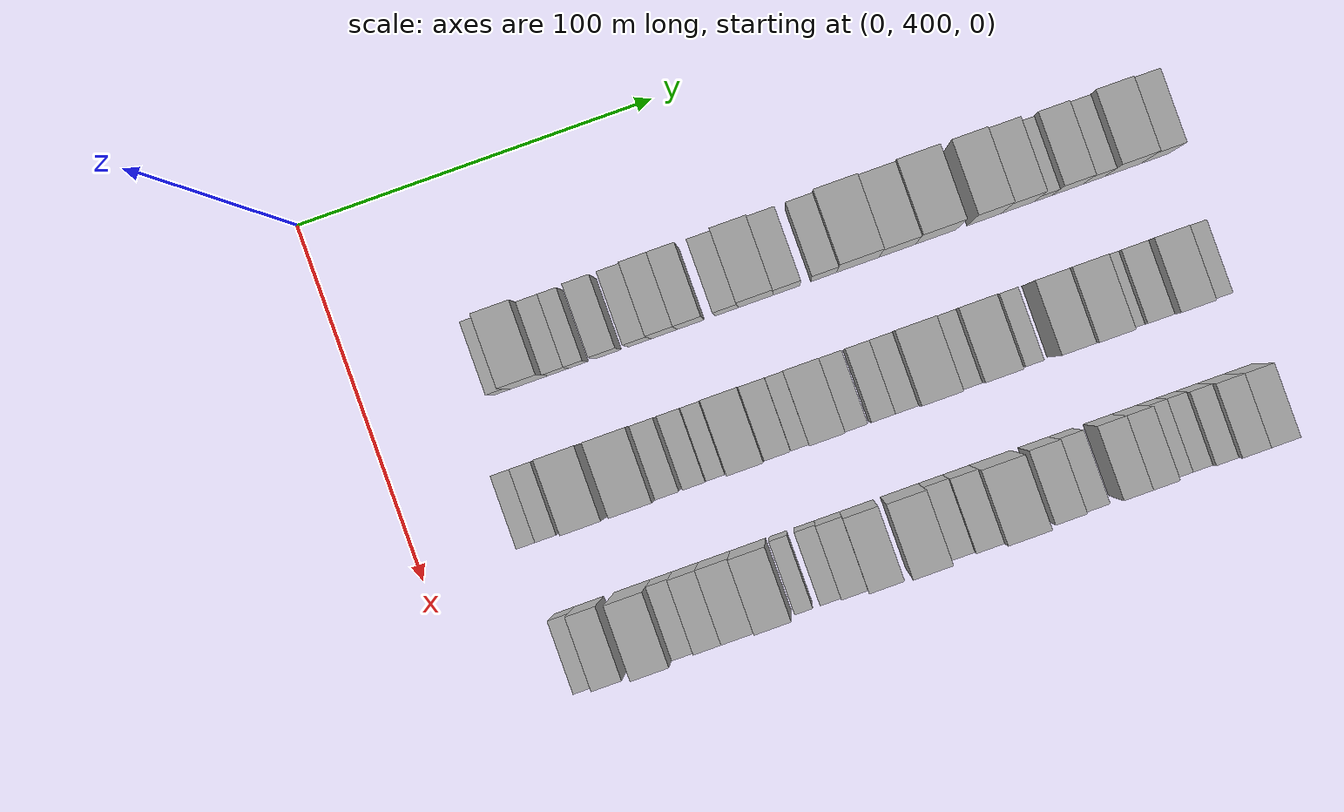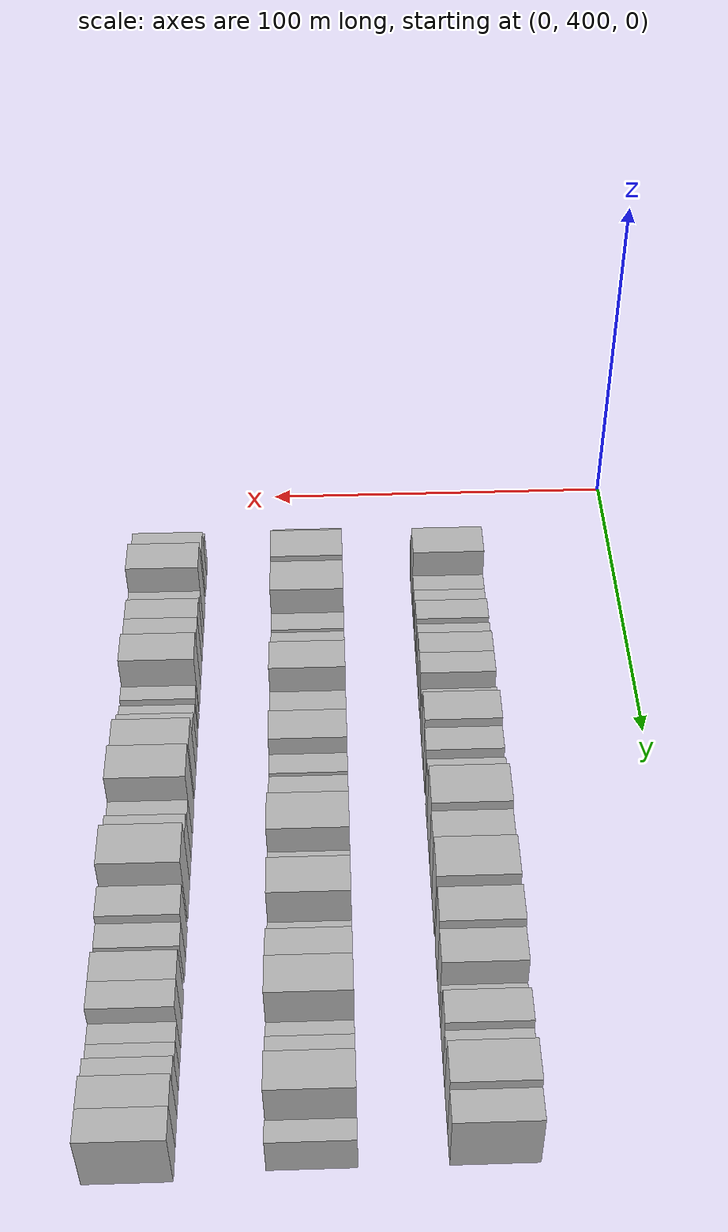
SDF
<sdf version="1.6">
 <world name="default">
  <model name="building_116">
   <static>1</static>
   <pose>50.0000 436.8128 0 0.000000 0.000000 0.000000</pose>
   <link name="link">
    <pose>0 0 6.00 0 0 0</pose>
    <collision name="collision"><geometry><box><size>20.0000 4.9068 12.0000</size></box></geometry></collision>
    <visual name="visual">
     <cast_shadows>0</cast_shadows>
     <geometry><box><size>20.0000 4.9068 12.0000</size></box></geometry>
     <material>
      <script>
       <uri>model://HANNAS_wall/materials/scripts</uri>
       <uri>model://HANNAS_wall/materials/textures</uri>
       <name>vrc/HANNAS_wall</name>
      </script>
     </material>
    </visual>
   </link>
  </model>
  <model name="building_117">
   <static>1</static>
   <pose>50.0000 444.4621 0 0.000000 0.000000 0.000000</pose>
   <link name="link">
    <pose>0 0 10.50 0 0 0</pose>
    <collision name="collision"><geometry><box><size>20.0000 10.3918 21.0000</size></box></geometry></collision>
    <visual name="visual">
     <cast_shadows>0</cast_shadows>
     <geometry><box><size>20.0000 10.3918 21.0000</size></box></geometry>
     <material>
      <script>
       <uri>model://HANNAS_wall/materials/scripts</uri>
       <uri>model://HANNAS_wall/materials/textures</uri>
       <name>vrc/HANNAS_wall</name>
      </script>
     </material>
    </visual>
   </link>
  </model>
  <model name="building_118">
   <static>1</static>
   <pose>50.0000 452.6016 0 0.000000 0.000000 0.000000</pose>
   <link name="link">
    <pose>0 0 6.00 0 0 0</pose>
    <collision name="collision"><geometry><box><size>20.0000 5.8871 12.0000</size></box></geometry></collision>
    <visual name="visual">
     <cast_shadows>0</cast_shadows>
     <geometry><box><size>20.0000 5.8871 12.0000</size></box></geometry>
     <material>
      <script>
       <uri>model://HANNAS_wall/materials/scripts</uri>
       <uri>model://HANNAS_wall/materials/textures</uri>
       <name>vrc/HANNAS_wall</name>
      </script>
     </material>
    </visual>
   </link>
  </model>
  <model name="building_119">
   <static>1</static>
   <pose>50.0000 458.1610 0 0.000000 0.000000 0.000000</pose>
   <link name="link">
    <pose>0 0 6.00 0 0 0</pose>
    <collision name="collision"><geometry><box><size>20.0000 5.2318 12.0000</size></box></geometry></collision>
    <visual name="visual">
     <cast_shadows>0</cast_shadows>
     <geometry><box><size>20.0000 5.2318 12.0000</size></box></geometry>
     <material>
      <script>
       <uri>model://HANNAS_wall/materials/scripts</uri>
       <uri>model://HANNAS_wall/materials/textures</uri>
       <name>vrc/HANNAS_wall</name>
      </script>
     </material>
    </visual>
   </link>
  </model>
  <model name="building_120">
   <static>1</static>
   <pose>50.0000 466.4466 0 0.000000 0.000000 0.000000</pose>
   <link name="link">
    <pose>0 0 7.50 0 0 0</pose>
    <collision name="collision"><geometry><box><size>20.0000 7.3394 15.0000</size></box></geometry></collision>
    <visual name="visual">
     <cast_shadows>0</cast_shadows>
     <geometry><box><size>20.0000 7.3394 15.0000</size></box></geometry>
     <material>
      <script>
       <uri>model://HANNAS_wall/materials/scripts</uri>
       <uri>model://HANNAS_wall/materials/textures</uri>
       <name>vrc/HANNAS_wall</name>
      </script>
     </material>
    </visual>
   </link>
  </model>
  <model name="building_121">
   <static>1</static>
   <pose>50.0000 475.3108 0 0.000000 0.000000 0.000000</pose>
   <link name="link">
    <pose>0 0 7.50 0 0 0</pose>
    <collision name="collision"><geometry><box><size>20.0000 6.3889 15.0000</size></box></geometry></collision>
    <visual name="visual">
     <cast_shadows>0</cast_shadows>
     <geometry><box><size>20.0000 6.3889 15.0000</size></box></geometry>
     <material>
      <script>
       <uri>model://HANNAS_wall/materials/scripts</uri>
       <uri>model://HANNAS_wall/materials/textures</uri>
       <name>vrc/HANNAS_wall</name>
      </script>
     </material>
    </visual>
   </link>
  </model>
  <model name="building_122">
   <static>1</static>
   <pose>50.0000 482.2318 0 0.000000 0.000000 0.000000</pose>
   <link name="link">
    <pose>0 0 9.00 0 0 0</pose>
    <collision name="collision"><geometry><box><size>20.0000 7.4531 18.0000</size></box></geometry></collision>
    <visual name="visual">
     <cast_shadows>0</cast_shadows>
     <geometry><box><size>20.0000 7.4531 18.0000</size></box></geometry>
     <material>
      <script>
       <uri>model://HANNAS_wall/materials/scripts</uri>
       <uri>model://HANNAS_wall/materials/textures</uri>
       <name>vrc/HANNAS_wall</name>
      </script>
     </material>
    </visual>
   </link>
  </model>
  <model name="building_123">
   <static>1</static>
   <pose>50.0000 489.7394 0 0.000000 0.000000 0.000000</pose>
   <link name="link">
    <pose>0 0 9.00 0 0 0</pose>
    <collision name="collision"><geometry><box><size>20.0000 7.5620 18.0000</size></box></geometry></collision>
    <visual name="visual">
     <cast_shadows>0</cast_shadows>
     <geometry><box><size>20.0000 7.5620 18.0000</size></box></geometry>
     <material>
      <script>
       <uri>model://HANNAS_wall/materials/scripts</uri>
       <uri>model://HANNAS_wall/materials/textures</uri>
       <name>vrc/HANNAS_wall</name>
      </script>
     </material>
    </visual>
   </link>
  </model>
  <model name="building_124">
   <static>1</static>
   <pose>50.0000 499.7995 0 0.000000 0.000000 0.000000</pose>
   <link name="link">
    <pose>0 0 7.50 0 0 0</pose>
    <collision name="collision"><geometry><box><size>20.0000 6.5583 15.0000</size></box></geometry></collision>
    <visual name="visual">
     <cast_shadows>0</cast_shadows>
     <geometry><box><size>20.0000 6.5583 15.0000</size></box></geometry>
     <material>
      <script>
       <uri>model://HANNAS_wall/materials/scripts</uri>
       <uri>model://HANNAS_wall/materials/textures</uri>
       <name>vrc/HANNAS_wall</name>
      </script>
     </material>
    </visual>
   </link>
  </model>
  <model name="building_125">
   <static>1</static>
   <pose>50.0000 507.9687 0 0.000000 0.000000 0.000000</pose>
   <link name="link">
    <pose>0 0 10.50 0 0 0</pose>
    <collision name="collision"><geometry><box><size>20.0000 9.7802 21.0000</size></box></geometry></collision>
    <visual name="visual">
     <cast_shadows>0</cast_shadows>
     <geometry><box><size>20.0000 9.7802 21.0000</size></box></geometry>
     <material>
      <script>
       <uri>model://HANNAS_wall/materials/scripts</uri>
       <uri>model://HANNAS_wall/materials/textures</uri>
       <name>vrc/HANNAS_wall</name>
      </script>
     </material>
    </visual>
   </link>
  </model>
  <model name="building_126">
   <static>1</static>
   <pose>50.0000 516.6600 0 0.000000 0.000000 0.000000</pose>
   <link name="link">
    <pose>0 0 9.00 0 0 0</pose>
    <collision name="collision"><geometry><box><size>20.0000 7.6024 18.0000</size></box></geometry></collision>
    <visual name="visual">
     <cast_shadows>0</cast_shadows>
     <geometry><box><size>20.0000 7.6024 18.0000</size></box></geometry>
     <material>
      <script>
       <uri>model://HANNAS_wall/materials/scripts</uri>
       <uri>model://HANNAS_wall/materials/textures</uri>
       <name>vrc/HANNAS_wall</name>
      </script>
     </material>
    </visual>
   </link>
  </model>
  <model name="building_127">
   <static>1</static>
   <pose>50.0000 527.1041 0 0.000000 0.000000 0.000000</pose>
   <link name="link">
    <pose>0 0 9.00 0 0 0</pose>
    <collision name="collision"><geometry><box><size>20.0000 7.2858 18.0000</size></box></geometry></collision>
    <visual name="visual">
     <cast_shadows>0</cast_shadows>
     <geometry><box><size>20.0000 7.2858 18.0000</size></box></geometry>
     <material>
      <script>
       <uri>model://HANNAS_wall/materials/scripts</uri>
       <uri>model://HANNAS_wall/materials/textures</uri>
       <name>vrc/HANNAS_wall</name>
      </script>
     </material>
    </visual>
   </link>
  </model>
  <model name="building_128">
   <static>1</static>
   <pose>50.0000 536.6849 0 0.000000 0.000000 0.000000</pose>
   <link name="link">
    <pose>0 0 12.00 0 0 0</pose>
    <collision name="collision"><geometry><box><size>20.0000 11.8758 24.0000</size></box></geometry></collision>
    <visual name="visual">
     <cast_shadows>0</cast_shadows>
     <geometry><box><size>20.0000 11.8758 24.0000</size></box></geometry>
     <material>
      <script>
       <uri>model://HANNAS_wall/materials/scripts</uri>
       <uri>model://HANNAS_wall/materials/textures</uri>
       <name>vrc/HANNAS_wall</name>
      </script>
     </material>
    </visual>
   </link>
  </model>
  <model name="building_129">
   <static>1</static>
   <pose>50.0000 547.7642 0 0.000000 0.000000 0.000000</pose>
   <link name="link">
    <pose>0 0 10.50 0 0 0</pose>
    <collision name="collision"><geometry><box><size>20.0000 10.2828 21.0000</size></box></geometry></collision>
    <visual name="visual">
     <cast_shadows>0</cast_shadows>
     <geometry><box><size>20.0000 10.2828 21.0000</size></box></geometry>
     <material>
      <script>
       <uri>model://HANNAS_wall/materials/scripts</uri>
       <uri>model://HANNAS_wall/materials/textures</uri>
       <name>vrc/HANNAS_wall</name>
      </script>
     </material>
    </visual>
   </link>
  </model>
  <model name="building_130">
   <static>1</static>
   <pose>50.0000 558.7158 0 0.000000 0.000000 0.000000</pose>
   <link name="link">
    <pose>0 0 12.00 0 0 0</pose>
    <collision name="collision"><geometry><box><size>20.0000 11.6202 24.0000</size></box></geometry></collision>
    <visual name="visual">
     <cast_shadows>0</cast_shadows>
     <geometry><box><size>20.0000 11.6202 24.0000</size></box></geometry>
     <material>
      <script>
       <uri>model://HANNAS_wall/materials/scripts</uri>
       <uri>model://HANNAS_wall/materials/textures</uri>
       <name>vrc/HANNAS_wall</name>
      </script>
     </material>
    </visual>
   </link>
  </model>
  <model name="building_131">
   <static>1</static>
   <pose>50.0000 572.3497 0 0.000000 0.000000 0.000000</pose>
   <link name="link">
    <pose>0 0 12.00 0 0 0</pose>
    <collision name="collision"><geometry><box><size>20.0000 9.6477 24.0000</size></box></geometry></collision>
    <visual name="visual">
     <cast_shadows>0</cast_shadows>
     <geometry><box><size>20.0000 9.6477 24.0000</size></box></geometry>
     <material>
      <script>
       <uri>model://HANNAS_wall/materials/scripts</uri>
       <uri>model://HANNAS_wall/materials/textures</uri>
       <name>vrc/HANNAS_wall</name>
      </script>
     </material>
    </visual>
   </link>
  </model>
  <model name="building_132">
   <static>1</static>
   <pose>50.0000 581.7564 0 0.000000 0.000000 0.000000</pose>
   <link name="link">
    <pose>0 0 10.50 0 0 0</pose>
    <collision name="collision"><geometry><box><size>20.0000 9.1657 21.0000</size></box></geometry></collision>
    <visual name="visual">
     <cast_shadows>0</cast_shadows>
     <geometry><box><size>20.0000 9.1657 21.0000</size></box></geometry>
     <material>
      <script>
       <uri>model://HANNAS_wall/materials/scripts</uri>
       <uri>model://HANNAS_wall/materials/textures</uri>
       <name>vrc/HANNAS_wall</name>
      </script>
     </material>
    </visual>
   </link>
  </model>
  <model name="building_133">
   <static>1</static>
   <pose>50.0000 588.9365 0 0.000000 0.000000 0.000000</pose>
   <link name="link">
    <pose>0 0 6.00 0 0 0</pose>
    <collision name="collision"><geometry><box><size>20.0000 5.1944 12.0000</size></box></geometry></collision>
    <visual name="visual">
     <cast_shadows>0</cast_shadows>
     <geometry><box><size>20.0000 5.1944 12.0000</size></box></geometry>
     <material>
      <script>
       <uri>model://HANNAS_wall/materials/scripts</uri>
       <uri>model://HANNAS_wall/materials/textures</uri>
       <name>vrc/HANNAS_wall</name>
      </script>
     </material>
    </visual>
   </link>
  </model>
  <model name="building_134">
   <static>1</static>
   <pose>50.0000 595.8015 0 0.000000 0.000000 0.000000</pose>
   <link name="link">
    <pose>0 0 9.00 0 0 0</pose>
    <collision name="collision"><geometry><box><size>20.0000 8.5357 18.0000</size></box></geometry></collision>
    <visual name="visual">
     <cast_shadows>0</cast_shadows>
     <geometry><box><size>20.0000 8.5357 18.0000</size></box></geometry>
     <material>
      <script>
       <uri>model://HANNAS_wall/materials/scripts</uri>
       <uri>model://HANNAS_wall/materials/textures</uri>
       <name>vrc/HANNAS_wall</name>
      </script>
     </material>
    </visual>
   </link>
  </model>
  <model name="building_135">
   <static>1</static>
   <pose>50.0000 603.1946 0 0.000000 0.000000 0.000000</pose>
   <link name="link">
    <pose>0 0 7.50 0 0 0</pose>
    <collision name="collision"><geometry><box><size>20.0000 6.2505 15.0000</size></box></geometry></collision>
    <visual name="visual">
     <cast_shadows>0</cast_shadows>
     <geometry><box><size>20.0000 6.2505 15.0000</size></box></geometry>
     <material>
      <script>
       <uri>model://HANNAS_wall/materials/scripts</uri>
       <uri>model://HANNAS_wall/materials/textures</uri>
       <name>vrc/HANNAS_wall</name>
      </script>
     </material>
    </visual>
   </link>
  </model>
  <model name="building_136">
   <static>1</static>
   <pose>50.0000 611.4402 0 0.000000 0.000000 0.000000</pose>
   <link name="link">
    <pose>0 0 10.50 0 0 0</pose>
    <collision name="collision"><geometry><box><size>20.0000 10.2408 21.0000</size></box></geometry></collision>
    <visual name="visual">
     <cast_shadows>0</cast_shadows>
     <geometry><box><size>20.0000 10.2408 21.0000</size></box></geometry>
     <material>
      <script>
       <uri>model://HANNAS_wall/materials/scripts</uri>
       <uri>model://HANNAS_wall/materials/textures</uri>
       <name>vrc/HANNAS_wall</name>
      </script>
     </material>
    </visual>
   </link>
  </model>
  <model name="building_137">
   <static>1</static>
   <pose>50.0000 620.4973 0 0.000000 0.000000 0.000000</pose>
   <link name="link">
    <pose>0 0 9.00 0 0 0</pose>
    <collision name="collision"><geometry><box><size>20.0000 7.8733 18.0000</size></box></geometry></collision>
    <visual name="visual">
     <cast_shadows>0</cast_shadows>
     <geometry><box><size>20.0000 7.8733 18.0000</size></box></geometry>
     <material>
      <script>
       <uri>model://HANNAS_wall/materials/scripts</uri>
       <uri>model://HANNAS_wall/materials/textures</uri>
       <name>vrc/HANNAS_wall</name>
      </script>
     </material>
    </visual>
   </link>
  </model>
  <model name="building_251">
   <static>1</static>
   <pose>90.0000 431.0537 0 0.000000 0.000000 0.000000</pose>
   <link name="link">
    <pose>0 0 6.00 0 0 0</pose>
    <collision name="collision"><geometry><box><size>20.0000 5.1190 12.0000</size></box></geometry></collision>
    <visual name="visual">
     <cast_shadows>0</cast_shadows>
     <geometry><box><size>20.0000 5.1190 12.0000</size></box></geometry>
     <material>
      <script>
       <uri>model://HANNAS_wall/materials/scripts</uri>
       <uri>model://HANNAS_wall/materials/textures</uri>
       <name>vrc/HANNAS_wall</name>
      </script>
     </material>
    </visual>
   </link>
  </model>
  <model name="building_252">
   <static>1</static>
   <pose>90.0000 436.5040 0 0.000000 0.000000 0.000000</pose>
   <link name="link">
    <pose>0 0 6.00 0 0 0</pose>
    <collision name="collision"><geometry><box><size>20.0000 5.7815 12.0000</size></box></geometry></collision>
    <visual name="visual">
     <cast_shadows>0</cast_shadows>
     <geometry><box><size>20.0000 5.7815 12.0000</size></box></geometry>
     <material>
      <script>
       <uri>model://HANNAS_wall/materials/scripts</uri>
       <uri>model://HANNAS_wall/materials/textures</uri>
       <name>vrc/HANNAS_wall</name>
      </script>
     </material>
    </visual>
   </link>
  </model>
  <model name="building_253">
   <static>1</static>
   <pose>90.0000 447.7959 0 0.000000 0.000000 0.000000</pose>
   <link name="link">
    <pose>0 0 12.00 0 0 0</pose>
    <collision name="collision"><geometry><box><size>20.0000 10.8023 24.0000</size></box></geometry></collision>
    <visual name="visual">
     <cast_shadows>0</cast_shadows>
     <geometry><box><size>20.0000 10.8023 24.0000</size></box></geometry>
     <material>
      <script>
       <uri>model://HANNAS_wall/materials/scripts</uri>
       <uri>model://HANNAS_wall/materials/textures</uri>
       <name>vrc/HANNAS_wall</name>
      </script>
     </material>
    </visual>
   </link>
  </model>
  <model name="building_254">
   <static>1</static>
   <pose>90.0000 460.9475 0 0.000000 0.000000 0.000000</pose>
   <link name="link">
    <pose>0 0 12.00 0 0 0</pose>
    <collision name="collision"><geometry><box><size>20.0000 11.5008 24.0000</size></box></geometry></collision>
    <visual name="visual">
     <cast_shadows>0</cast_shadows>
     <geometry><box><size>20.0000 11.5008 24.0000</size></box></geometry>
     <material>
      <script>
       <uri>model://HANNAS_wall/materials/scripts</uri>
       <uri>model://HANNAS_wall/materials/textures</uri>
       <name>vrc/HANNAS_wall</name>
      </script>
     </material>
    </visual>
   </link>
  </model>
  <model name="building_255">
   <static>1</static>
   <pose>90.0000 469.9066 0 0.000000 0.000000 0.000000</pose>
   <link name="link">
    <pose>0 0 7.50 0 0 0</pose>
    <collision name="collision"><geometry><box><size>20.0000 6.4175 15.0000</size></box></geometry></collision>
    <visual name="visual">
     <cast_shadows>0</cast_shadows>
     <geometry><box><size>20.0000 6.4175 15.0000</size></box></geometry>
     <material>
      <script>
       <uri>model://HANNAS_wall/materials/scripts</uri>
       <uri>model://HANNAS_wall/materials/textures</uri>
       <name>vrc/HANNAS_wall</name>
      </script>
     </material>
    </visual>
   </link>
  </model>
  <model name="building_256">
   <static>1</static>
   <pose>90.0000 477.2025 0 0.000000 0.000000 0.000000</pose>
   <link name="link">
    <pose>0 0 7.50 0 0 0</pose>
    <collision name="collision"><geometry><box><size>20.0000 6.1743 15.0000</size></box></geometry></collision>
    <visual name="visual">
     <cast_shadows>0</cast_shadows>
     <geometry><box><size>20.0000 6.1743 15.0000</size></box></geometry>
     <material>
      <script>
       <uri>model://HANNAS_wall/materials/scripts</uri>
       <uri>model://HANNAS_wall/materials/textures</uri>
       <name>vrc/HANNAS_wall</name>
      </script>
     </material>
    </visual>
   </link>
  </model>
  <model name="building_257">
   <static>1</static>
   <pose>90.0000 482.8730 0 0.000000 0.000000 0.000000</pose>
   <link name="link">
    <pose>0 0 6.00 0 0 0</pose>
    <collision name="collision"><geometry><box><size>20.0000 5.1666 12.0000</size></box></geometry></collision>
    <visual name="visual">
     <cast_shadows>0</cast_shadows>
     <geometry><box><size>20.0000 5.1666 12.0000</size></box></geometry>
     <material>
      <script>
       <uri>model://HANNAS_wall/materials/scripts</uri>
       <uri>model://HANNAS_wall/materials/textures</uri>
       <name>vrc/HANNAS_wall</name>
      </script>
     </material>
    </visual>
   </link>
  </model>
  <model name="building_258">
   <static>1</static>
   <pose>90.0000 491.3443 0 0.000000 0.000000 0.000000</pose>
   <link name="link">
    <pose>0 0 12.00 0 0 0</pose>
    <collision name="collision"><geometry><box><size>20.0000 9.7761 24.0000</size></box></geometry></collision>
    <visual name="visual">
     <cast_shadows>0</cast_shadows>
     <geometry><box><size>20.0000 9.7761 24.0000</size></box></geometry>
     <material>
      <script>
       <uri>model://HANNAS_wall/materials/scripts</uri>
       <uri>model://HANNAS_wall/materials/textures</uri>
       <name>vrc/HANNAS_wall</name>
      </script>
     </material>
    </visual>
   </link>
  </model>
  <model name="building_259">
   <static>1</static>
   <pose>90.0000 499.8407 0 0.000000 0.000000 0.000000</pose>
   <link name="link">
    <pose>0 0 7.50 0 0 0</pose>
    <collision name="collision"><geometry><box><size>20.0000 7.2166 15.0000</size></box></geometry></collision>
    <visual name="visual">
     <cast_shadows>0</cast_shadows>
     <geometry><box><size>20.0000 7.2166 15.0000</size></box></geometry>
     <material>
      <script>
       <uri>model://HANNAS_wall/materials/scripts</uri>
       <uri>model://HANNAS_wall/materials/textures</uri>
       <name>vrc/HANNAS_wall</name>
      </script>
     </material>
    </visual>
   </link>
  </model>
  <model name="building_260">
   <static>1</static>
   <pose>90.0000 505.9267 0 0.000000 0.000000 0.000000</pose>
   <link name="link">
    <pose>0 0 6.00 0 0 0</pose>
    <collision name="collision"><geometry><box><size>20.0000 4.9554 12.0000</size></box></geometry></collision>
    <visual name="visual">
     <cast_shadows>0</cast_shadows>
     <geometry><box><size>20.0000 4.9554 12.0000</size></box></geometry>
     <material>
      <script>
       <uri>model://HANNAS_wall/materials/scripts</uri>
       <uri>model://HANNAS_wall/materials/textures</uri>
       <name>vrc/HANNAS_wall</name>
      </script>
     </material>
    </visual>
   </link>
  </model>
  <model name="building_261">
   <static>1</static>
   <pose>90.0000 513.2060 0 0.000000 0.000000 0.000000</pose>
   <link name="link">
    <pose>0 0 10.50 0 0 0</pose>
    <collision name="collision"><geometry><box><size>20.0000 9.6032 21.0000</size></box></geometry></collision>
    <visual name="visual">
     <cast_shadows>0</cast_shadows>
     <geometry><box><size>20.0000 9.6032 21.0000</size></box></geometry>
     <material>
      <script>
       <uri>model://HANNAS_wall/materials/scripts</uri>
       <uri>model://HANNAS_wall/materials/textures</uri>
       <name>vrc/HANNAS_wall</name>
      </script>
     </material>
    </visual>
   </link>
  </model>
  <model name="building_262">
   <static>1</static>
   <pose>90.0000 521.1774 0 0.000000 0.000000 0.000000</pose>
   <link name="link">
    <pose>0 0 7.50 0 0 0</pose>
    <collision name="collision"><geometry><box><size>20.0000 6.3396 15.0000</size></box></geometry></collision>
    <visual name="visual">
     <cast_shadows>0</cast_shadows>
     <geometry><box><size>20.0000 6.3396 15.0000</size></box></geometry>
     <material>
      <script>
       <uri>model://HANNAS_wall/materials/scripts</uri>
       <uri>model://HANNAS_wall/materials/textures</uri>
       <name>vrc/HANNAS_wall</name>
      </script>
     </material>
    </visual>
   </link>
  </model>
  <model name="building_263">
   <static>1</static>
   <pose>90.0000 528.6152 0 0.000000 0.000000 0.000000</pose>
   <link name="link">
    <pose>0 0 7.50 0 0 0</pose>
    <collision name="collision"><geometry><box><size>20.0000 6.5360 15.0000</size></box></geometry></collision>
    <visual name="visual">
     <cast_shadows>0</cast_shadows>
     <geometry><box><size>20.0000 6.5360 15.0000</size></box></geometry>
     <material>
      <script>
       <uri>model://HANNAS_wall/materials/scripts</uri>
       <uri>model://HANNAS_wall/materials/textures</uri>
       <name>vrc/HANNAS_wall</name>
      </script>
     </material>
    </visual>
   </link>
  </model>
  <model name="building_264">
   <static>1</static>
   <pose>90.0000 535.0015 0 0.000000 0.000000 0.000000</pose>
   <link name="link">
    <pose>0 0 7.50 0 0 0</pose>
    <collision name="collision"><geometry><box><size>20.0000 6.2367 15.0000</size></box></geometry></collision>
    <visual name="visual">
     <cast_shadows>0</cast_shadows>
     <geometry><box><size>20.0000 6.2367 15.0000</size></box></geometry>
     <material>
      <script>
       <uri>model://HANNAS_wall/materials/scripts</uri>
       <uri>model://HANNAS_wall/materials/textures</uri>
       <name>vrc/HANNAS_wall</name>
      </script>
     </material>
    </visual>
   </link>
  </model>
  <model name="building_265">
   <static>1</static>
   <pose>90.0000 543.6787 0 0.000000 0.000000 0.000000</pose>
   <link name="link">
    <pose>0 0 12.00 0 0 0</pose>
    <collision name="collision"><geometry><box><size>20.0000 11.1176 24.0000</size></box></geometry></collision>
    <visual name="visual">
     <cast_shadows>0</cast_shadows>
     <geometry><box><size>20.0000 11.1176 24.0000</size></box></geometry>
     <material>
      <script>
       <uri>model://HANNAS_wall/materials/scripts</uri>
       <uri>model://HANNAS_wall/materials/textures</uri>
       <name>vrc/HANNAS_wall</name>
      </script>
     </material>
    </visual>
   </link>
  </model>
  <model name="building_266">
   <static>1</static>
   <pose>90.0000 552.3120 0 0.000000 0.000000 0.000000</pose>
   <link name="link">
    <pose>0 0 7.50 0 0 0</pose>
    <collision name="collision"><geometry><box><size>20.0000 6.1491 15.0000</size></box></geometry></collision>
    <visual name="visual">
     <cast_shadows>0</cast_shadows>
     <geometry><box><size>20.0000 6.1491 15.0000</size></box></geometry>
     <material>
      <script>
       <uri>model://HANNAS_wall/materials/scripts</uri>
       <uri>model://HANNAS_wall/materials/textures</uri>
       <name>vrc/HANNAS_wall</name>
      </script>
     </material>
    </visual>
   </link>
  </model>
  <model name="building_267">
   <static>1</static>
   <pose>90.0000 560.5274 0 0.000000 0.000000 0.000000</pose>
   <link name="link">
    <pose>0 0 10.50 0 0 0</pose>
    <collision name="collision"><geometry><box><size>20.0000 10.2817 21.0000</size></box></geometry></collision>
    <visual name="visual">
     <cast_shadows>0</cast_shadows>
     <geometry><box><size>20.0000 10.2817 21.0000</size></box></geometry>
     <material>
      <script>
       <uri>model://HANNAS_wall/materials/scripts</uri>
       <uri>model://HANNAS_wall/materials/textures</uri>
       <name>vrc/HANNAS_wall</name>
      </script>
     </material>
    </visual>
   </link>
  </model>
  <model name="building_268">
   <static>1</static>
   <pose>90.0000 570.2224 0 0.000000 0.000000 0.000000</pose>
   <link name="link">
    <pose>0 0 6.00 0 0 0</pose>
    <collision name="collision"><geometry><box><size>20.0000 5.1083 12.0000</size></box></geometry></collision>
    <visual name="visual">
     <cast_shadows>0</cast_shadows>
     <geometry><box><size>20.0000 5.1083 12.0000</size></box></geometry>
     <material>
      <script>
       <uri>model://HANNAS_wall/materials/scripts</uri>
       <uri>model://HANNAS_wall/materials/textures</uri>
       <name>vrc/HANNAS_wall</name>
      </script>
     </material>
    </visual>
   </link>
  </model>
  <model name="building_269">
   <static>1</static>
   <pose>90.0000 580.4116 0 0.000000 0.000000 0.000000</pose>
   <link name="link">
    <pose>0 0 10.50 0 0 0</pose>
    <collision name="collision"><geometry><box><size>20.0000 9.2701 21.0000</size></box></geometry></collision>
    <visual name="visual">
     <cast_shadows>0</cast_shadows>
     <geometry><box><size>20.0000 9.2701 21.0000</size></box></geometry>
     <material>
      <script>
       <uri>model://HANNAS_wall/materials/scripts</uri>
       <uri>model://HANNAS_wall/materials/textures</uri>
       <name>vrc/HANNAS_wall</name>
      </script>
     </material>
    </visual>
   </link>
  </model>
  <model name="building_270">
   <static>1</static>
   <pose>90.0000 589.9284 0 0.000000 0.000000 0.000000</pose>
   <link name="link">
    <pose>0 0 12.00 0 0 0</pose>
    <collision name="collision"><geometry><box><size>20.0000 9.7635 24.0000</size></box></geometry></collision>
    <visual name="visual">
     <cast_shadows>0</cast_shadows>
     <geometry><box><size>20.0000 9.7635 24.0000</size></box></geometry>
     <material>
      <script>
       <uri>model://HANNAS_wall/materials/scripts</uri>
       <uri>model://HANNAS_wall/materials/textures</uri>
       <name>vrc/HANNAS_wall</name>
      </script>
     </material>
    </visual>
   </link>
  </model>
  <model name="building_271">
   <static>1</static>
   <pose>90.0000 597.5297 0 0.000000 0.000000 0.000000</pose>
   <link name="link">
    <pose>0 0 6.00 0 0 0</pose>
    <collision name="collision"><geometry><box><size>20.0000 5.4391 12.0000</size></box></geometry></collision>
    <visual name="visual">
     <cast_shadows>0</cast_shadows>
     <geometry><box><size>20.0000 5.4391 12.0000</size></box></geometry>
     <material>
      <script>
       <uri>model://HANNAS_wall/materials/scripts</uri>
       <uri>model://HANNAS_wall/materials/textures</uri>
       <name>vrc/HANNAS_wall</name>
      </script>
     </material>
    </visual>
   </link>
  </model>
  <model name="building_272">
   <static>1</static>
   <pose>90.0000 603.9139 0 0.000000 0.000000 0.000000</pose>
   <link name="link">
    <pose>0 0 7.50 0 0 0</pose>
    <collision name="collision"><geometry><box><size>20.0000 7.3292 15.0000</size></box></geometry></collision>
    <visual name="visual">
     <cast_shadows>0</cast_shadows>
     <geometry><box><size>20.0000 7.3292 15.0000</size></box></geometry>
     <material>
      <script>
       <uri>model://HANNAS_wall/materials/scripts</uri>
       <uri>model://HANNAS_wall/materials/textures</uri>
       <name>vrc/HANNAS_wall</name>
      </script>
     </material>
    </visual>
   </link>
  </model>
  <model name="building_273">
   <static>1</static>
   <pose>90.0000 612.3114 0 0.000000 0.000000 0.000000</pose>
   <link name="link">
    <pose>0 0 10.50 0 0 0</pose>
    <collision name="collision"><geometry><box><size>20.0000 9.4659 21.0000</size></box></geometry></collision>
    <visual name="visual">
     <cast_shadows>0</cast_shadows>
     <geometry><box><size>20.0000 9.4659 21.0000</size></box></geometry>
     <material>
      <script>
       <uri>model://HANNAS_wall/materials/scripts</uri>
       <uri>model://HANNAS_wall/materials/textures</uri>
       <name>vrc/HANNAS_wall</name>
      </script>
     </material>
    </visual>
   </link>
  </model>
  <model name="building_274">
   <static>1</static>
   <pose>90.0000 621.6936 0 0.000000 0.000000 0.000000</pose>
   <link name="link">
    <pose>0 0 6.00 0 0 0</pose>
    <collision name="collision"><geometry><box><size>20.0000 5.2985 12.0000</size></box></geometry></collision>
    <visual name="visual">
     <cast_shadows>0</cast_shadows>
     <geometry><box><size>20.0000 5.2985 12.0000</size></box></geometry>
     <material>
      <script>
       <uri>model://HANNAS_wall/materials/scripts</uri>
       <uri>model://HANNAS_wall/materials/textures</uri>
       <name>vrc/HANNAS_wall</name>
      </script>
     </material>
    </visual>
   </link>
  </model>
  <model name="building_390">
   <static>1</static>
   <pose>130.0000 432.6340 0 0.000000 0.000000 0.000000</pose>
   <link name="link">
    <pose>0 0 6.00 0 0 0</pose>
    <collision name="collision"><geometry><box><size>20.0000 5.7590 12.0000</size></box></geometry></collision>
    <visual name="visual">
     <cast_shadows>0</cast_shadows>
     <geometry><box><size>20.0000 5.7590 12.0000</size></box></geometry>
     <material>
      <script>
       <uri>model://HANNAS_wall/materials/scripts</uri>
       <uri>model://HANNAS_wall/materials/textures</uri>
       <name>vrc/HANNAS_wall</name>
      </script>
     </material>
    </visual>
   </link>
  </model>
  <model name="building_391">
   <static>1</static>
   <pose>130.0000 439.5973 0 0.000000 0.000000 0.000000</pose>
   <link name="link">
    <pose>0 0 9.00 0 0 0</pose>
    <collision name="collision"><geometry><box><size>20.0000 8.1677 18.0000</size></box></geometry></collision>
    <visual name="visual">
     <cast_shadows>0</cast_shadows>
     <geometry><box><size>20.0000 8.1677 18.0000</size></box></geometry>
     <material>
      <script>
       <uri>model://HANNAS_wall/materials/scripts</uri>
       <uri>model://HANNAS_wall/materials/textures</uri>
       <name>vrc/HANNAS_wall</name>
      </script>
     </material>
    </visual>
   </link>
  </model>
  <model name="building_392">
   <static>1</static>
   <pose>130.0000 451.7884 0 0.000000 0.000000 0.000000</pose>
   <link name="link">
    <pose>0 0 12.00 0 0 0</pose>
    <collision name="collision"><geometry><box><size>20.0000 10.2145 24.0000</size></box></geometry></collision>
    <visual name="visual">
     <cast_shadows>0</cast_shadows>
     <geometry><box><size>20.0000 10.2145 24.0000</size></box></geometry>
     <material>
      <script>
       <uri>model://HANNAS_wall/materials/scripts</uri>
       <uri>model://HANNAS_wall/materials/textures</uri>
       <name>vrc/HANNAS_wall</name>
      </script>
     </material>
    </visual>
   </link>
  </model>
  <model name="building_393">
   <static>1</static>
   <pose>130.0000 459.9130 0 0.000000 0.000000 0.000000</pose>
   <link name="link">
    <pose>0 0 7.50 0 0 0</pose>
    <collision name="collision"><geometry><box><size>20.0000 6.0347 15.0000</size></box></geometry></collision>
    <visual name="visual">
     <cast_shadows>0</cast_shadows>
     <geometry><box><size>20.0000 6.0347 15.0000</size></box></geometry>
     <material>
      <script>
       <uri>model://HANNAS_wall/materials/scripts</uri>
       <uri>model://HANNAS_wall/materials/textures</uri>
       <name>vrc/HANNAS_wall</name>
      </script>
     </material>
    </visual>
   </link>
  </model>
  <model name="building_394">
   <static>1</static>
   <pose>130.0000 466.6608 0 0.000000 0.000000 0.000000</pose>
   <link name="link">
    <pose>0 0 9.00 0 0 0</pose>
    <collision name="collision"><geometry><box><size>20.0000 7.4608 18.0000</size></box></geometry></collision>
    <visual name="visual">
     <cast_shadows>0</cast_shadows>
     <geometry><box><size>20.0000 7.4608 18.0000</size></box></geometry>
     <material>
      <script>
       <uri>model://HANNAS_wall/materials/scripts</uri>
       <uri>model://HANNAS_wall/materials/textures</uri>
       <name>vrc/HANNAS_wall</name>
      </script>
     </material>
    </visual>
   </link>
  </model>
  <model name="building_395">
   <static>1</static>
   <pose>130.0000 474.8474 0 0.000000 0.000000 0.000000</pose>
   <link name="link">
    <pose>0 0 9.00 0 0 0</pose>
    <collision name="collision"><geometry><box><size>20.0000 8.9125 18.0000</size></box></geometry></collision>
    <visual name="visual">
     <cast_shadows>0</cast_shadows>
     <geometry><box><size>20.0000 8.9125 18.0000</size></box></geometry>
     <material>
      <script>
       <uri>model://HANNAS_wall/materials/scripts</uri>
       <uri>model://HANNAS_wall/materials/textures</uri>
       <name>vrc/HANNAS_wall</name>
      </script>
     </material>
    </visual>
   </link>
  </model>
  <model name="building_396">
   <static>1</static>
   <pose>130.0000 484.2724 0 0.000000 0.000000 0.000000</pose>
   <link name="link">
    <pose>0 0 10.50 0 0 0</pose>
    <collision name="collision"><geometry><box><size>20.0000 9.9374 21.0000</size></box></geometry></collision>
    <visual name="visual">
     <cast_shadows>0</cast_shadows>
     <geometry><box><size>20.0000 9.9374 21.0000</size></box></geometry>
     <material>
      <script>
       <uri>model://HANNAS_wall/materials/scripts</uri>
       <uri>model://HANNAS_wall/materials/textures</uri>
       <name>vrc/HANNAS_wall</name>
      </script>
     </material>
    </visual>
   </link>
  </model>
  <model name="building_397">
   <static>1</static>
   <pose>130.0000 492.7065 0 0.000000 0.000000 0.000000</pose>
   <link name="link">
    <pose>0 0 6.00 0 0 0</pose>
    <collision name="collision"><geometry><box><size>20.0000 4.9308 12.0000</size></box></geometry></collision>
    <visual name="visual">
     <cast_shadows>0</cast_shadows>
     <geometry><box><size>20.0000 4.9308 12.0000</size></box></geometry>
     <material>
      <script>
       <uri>model://HANNAS_wall/materials/scripts</uri>
       <uri>model://HANNAS_wall/materials/textures</uri>
       <name>vrc/HANNAS_wall</name>
      </script>
     </material>
    </visual>
   </link>
  </model>
  <model name="building_398">
   <static>1</static>
   <pose>130.0000 500.0279 0 0.000000 0.000000 0.000000</pose>
   <link name="link">
    <pose>0 0 6.00 0 0 0</pose>
    <collision name="collision"><geometry><box><size>20.0000 5.7120 12.0000</size></box></geometry></collision>
    <visual name="visual">
     <cast_shadows>0</cast_shadows>
     <geometry><box><size>20.0000 5.7120 12.0000</size></box></geometry>
     <material>
      <script>
       <uri>model://HANNAS_wall/materials/scripts</uri>
       <uri>model://HANNAS_wall/materials/textures</uri>
       <name>vrc/HANNAS_wall</name>
      </script>
     </material>
    </visual>
   </link>
  </model>
  <model name="building_399">
   <static>1</static>
   <pose>130.0000 506.4812 0 0.000000 0.000000 0.000000</pose>
   <link name="link">
    <pose>0 0 7.50 0 0 0</pose>
    <collision name="collision"><geometry><box><size>20.0000 7.1946 15.0000</size></box></geometry></collision>
    <visual name="visual">
     <cast_shadows>0</cast_shadows>
     <geometry><box><size>20.0000 7.1946 15.0000</size></box></geometry>
     <material>
      <script>
       <uri>model://HANNAS_wall/materials/scripts</uri>
       <uri>model://HANNAS_wall/materials/textures</uri>
       <name>vrc/HANNAS_wall</name>
      </script>
     </material>
    </visual>
   </link>
  </model>
  <model name="building_400">
   <static>1</static>
   <pose>130.0000 514.7929 0 0.000000 0.000000 0.000000</pose>
   <link name="link">
    <pose>0 0 10.50 0 0 0</pose>
    <collision name="collision"><geometry><box><size>20.0000 9.4287 21.0000</size></box></geometry></collision>
    <visual name="visual">
     <cast_shadows>0</cast_shadows>
     <geometry><box><size>20.0000 9.4287 21.0000</size></box></geometry>
     <material>
      <script>
       <uri>model://HANNAS_wall/materials/scripts</uri>
       <uri>model://HANNAS_wall/materials/textures</uri>
       <name>vrc/HANNAS_wall</name>
      </script>
     </material>
    </visual>
   </link>
  </model>
  <model name="building_401">
   <static>1</static>
   <pose>130.0000 526.8454 0 0.000000 0.000000 0.000000</pose>
   <link name="link">
    <pose>0 0 12.00 0 0 0</pose>
    <collision name="collision"><geometry><box><size>20.0000 10.6762 24.0000</size></box></geometry></collision>
    <visual name="visual">
     <cast_shadows>0</cast_shadows>
     <geometry><box><size>20.0000 10.6762 24.0000</size></box></geometry>
     <material>
      <script>
       <uri>model://HANNAS_wall/materials/scripts</uri>
       <uri>model://HANNAS_wall/materials/textures</uri>
       <name>vrc/HANNAS_wall</name>
      </script>
     </material>
    </visual>
   </link>
  </model>
  <model name="building_402">
   <static>1</static>
   <pose>130.0000 535.6045 0 0.000000 0.000000 0.000000</pose>
   <link name="link">
    <pose>0 0 7.50 0 0 0</pose>
    <collision name="collision"><geometry><box><size>20.0000 6.8421 15.0000</size></box></geometry></collision>
    <visual name="visual">
     <cast_shadows>0</cast_shadows>
     <geometry><box><size>20.0000 6.8421 15.0000</size></box></geometry>
     <material>
      <script>
       <uri>model://HANNAS_wall/materials/scripts</uri>
       <uri>model://HANNAS_wall/materials/textures</uri>
       <name>vrc/HANNAS_wall</name>
      </script>
     </material>
    </visual>
   </link>
  </model>
  <model name="building_403">
   <static>1</static>
   <pose>130.0000 542.8154 0 0.000000 0.000000 0.000000</pose>
   <link name="link">
    <pose>0 0 9.00 0 0 0</pose>
    <collision name="collision"><geometry><box><size>20.0000 7.5798 18.0000</size></box></geometry></collision>
    <visual name="visual">
     <cast_shadows>0</cast_shadows>
     <geometry><box><size>20.0000 7.5798 18.0000</size></box></geometry>
     <material>
      <script>
       <uri>model://HANNAS_wall/materials/scripts</uri>
       <uri>model://HANNAS_wall/materials/textures</uri>
       <name>vrc/HANNAS_wall</name>
      </script>
     </material>
    </visual>
   </link>
  </model>
  <model name="building_404">
   <static>1</static>
   <pose>130.0000 552.4669 0 0.000000 0.000000 0.000000</pose>
   <link name="link">
    <pose>0 0 12.00 0 0 0</pose>
    <collision name="collision"><geometry><box><size>20.0000 11.7231 24.0000</size></box></geometry></collision>
    <visual name="visual">
     <cast_shadows>0</cast_shadows>
     <geometry><box><size>20.0000 11.7231 24.0000</size></box></geometry>
     <material>
      <script>
       <uri>model://HANNAS_wall/materials/scripts</uri>
       <uri>model://HANNAS_wall/materials/textures</uri>
       <name>vrc/HANNAS_wall</name>
      </script>
     </material>
    </visual>
   </link>
  </model>
  <model name="building_405">
   <static>1</static>
   <pose>130.0000 564.6148 0 0.000000 0.000000 0.000000</pose>
   <link name="link">
    <pose>0 0 9.00 0 0 0</pose>
    <collision name="collision"><geometry><box><size>20.0000 8.5729 18.0000</size></box></geometry></collision>
    <visual name="visual">
     <cast_shadows>0</cast_shadows>
     <geometry><box><size>20.0000 8.5729 18.0000</size></box></geometry>
     <material>
      <script>
       <uri>model://HANNAS_wall/materials/scripts</uri>
       <uri>model://HANNAS_wall/materials/textures</uri>
       <name>vrc/HANNAS_wall</name>
      </script>
     </material>
    </visual>
   </link>
  </model>
  <model name="building_406">
   <static>1</static>
   <pose>130.0000 572.2984 0 0.000000 0.000000 0.000000</pose>
   <link name="link">
    <pose>0 0 7.50 0 0 0</pose>
    <collision name="collision"><geometry><box><size>20.0000 6.7942 15.0000</size></box></geometry></collision>
    <visual name="visual">
     <cast_shadows>0</cast_shadows>
     <geometry><box><size>20.0000 6.7942 15.0000</size></box></geometry>
     <material>
      <script>
       <uri>model://HANNAS_wall/materials/scripts</uri>
       <uri>model://HANNAS_wall/materials/textures</uri>
       <name>vrc/HANNAS_wall</name>
      </script>
     </material>
    </visual>
   </link>
  </model>
  <model name="building_407">
   <static>1</static>
   <pose>130.0000 582.6672 0 0.000000 0.000000 0.000000</pose>
   <link name="link">
    <pose>0 0 9.00 0 0 0</pose>
    <collision name="collision"><geometry><box><size>20.0000 7.9435 18.0000</size></box></geometry></collision>
    <visual name="visual">
     <cast_shadows>0</cast_shadows>
     <geometry><box><size>20.0000 7.9435 18.0000</size></box></geometry>
     <material>
      <script>
       <uri>model://HANNAS_wall/materials/scripts</uri>
       <uri>model://HANNAS_wall/materials/textures</uri>
       <name>vrc/HANNAS_wall</name>
      </script>
     </material>
    </visual>
   </link>
  </model>
  <model name="building_408">
   <static>1</static>
   <pose>130.0000 590.2518 0 0.000000 0.000000 0.000000</pose>
   <link name="link">
    <pose>0 0 9.00 0 0 0</pose>
    <collision name="collision"><geometry><box><size>20.0000 7.2256 18.0000</size></box></geometry></collision>
    <visual name="visual">
     <cast_shadows>0</cast_shadows>
     <geometry><box><size>20.0000 7.2256 18.0000</size></box></geometry>
     <material>
      <script>
       <uri>model://HANNAS_wall/materials/scripts</uri>
       <uri>model://HANNAS_wall/materials/textures</uri>
       <name>vrc/HANNAS_wall</name>
      </script>
     </material>
    </visual>
   </link>
  </model>
  <model name="building_409">
   <static>1</static>
   <pose>130.0000 596.4772 0 0.000000 0.000000 0.000000</pose>
   <link name="link">
    <pose>0 0 6.00 0 0 0</pose>
    <collision name="collision"><geometry><box><size>20.0000 5.2253 12.0000</size></box></geometry></collision>
    <visual name="visual">
     <cast_shadows>0</cast_shadows>
     <geometry><box><size>20.0000 5.2253 12.0000</size></box></geometry>
     <material>
      <script>
       <uri>model://HANNAS_wall/materials/scripts</uri>
       <uri>model://HANNAS_wall/materials/textures</uri>
       <name>vrc/HANNAS_wall</name>
      </script>
     </material>
    </visual>
   </link>
  </model>
  <model name="building_410">
   <static>1</static>
   <pose>130.0000 601.7663 0 0.000000 0.000000 0.000000</pose>
   <link name="link">
    <pose>0 0 6.00 0 0 0</pose>
    <collision name="collision"><geometry><box><size>20.0000 5.3530 12.0000</size></box></geometry></collision>
    <visual name="visual">
     <cast_shadows>0</cast_shadows>
     <geometry><box><size>20.0000 5.3530 12.0000</size></box></geometry>
     <material>
      <script>
       <uri>model://HANNAS_wall/materials/scripts</uri>
       <uri>model://HANNAS_wall/materials/textures</uri>
       <name>vrc/HANNAS_wall</name>
      </script>
     </material>
    </visual>
   </link>
  </model>
  <model name="building_411">
   <static>1</static>
   <pose>130.0000 607.4977 0 0.000000 0.000000 0.000000</pose>
   <link name="link">
    <pose>0 0 7.50 0 0 0</pose>
    <collision name="collision"><geometry><box><size>20.0000 6.1096 15.0000</size></box></geometry></collision>
    <visual name="visual">
     <cast_shadows>0</cast_shadows>
     <geometry><box><size>20.0000 6.1096 15.0000</size></box></geometry>
     <material>
      <script>
       <uri>model://HANNAS_wall/materials/scripts</uri>
       <uri>model://HANNAS_wall/materials/textures</uri>
       <name>vrc/HANNAS_wall</name>
      </script>
     </material>
    </visual>
   </link>
  </model>
  <model name="building_412">
   <static>1</static>
   <pose>130.0000 614.4482 0 0.000000 0.000000 0.000000</pose>
   <link name="link">
    <pose>0 0 9.00 0 0 0</pose>
    <collision name="collision"><geometry><box><size>20.0000 7.7915 18.0000</size></box></geometry></collision>
    <visual name="visual">
     <cast_shadows>0</cast_shadows>
     <geometry><box><size>20.0000 7.7915 18.0000</size></box></geometry>
     <material>
      <script>
       <uri>model://HANNAS_wall/materials/scripts</uri>
       <uri>model://HANNAS_wall/materials/textures</uri>
       <name>vrc/HANNAS_wall</name>
      </script>
     </material>
    </visual>
   </link>
  </model>
  <model name="building_413">
   <static>1</static>
   <pose>130.0000 622.3198 0 0.000000 0.000000 0.000000</pose>
   <link name="link">
    <pose>0 0 9.00 0 0 0</pose>
    <collision name="collision"><geometry><box><size>20.0000 7.9516 18.0000</size></box></geometry></collision>
    <visual name="visual">
     <cast_shadows>0</cast_shadows>
     <geometry><box><size>20.0000 7.9516 18.0000</size></box></geometry>
     <material>
      <script>
       <uri>model://HANNAS_wall/materials/scripts</uri>
       <uri>model://HANNAS_wall/materials/textures</uri>
       <name>vrc/HANNAS_wall</name>
      </script>
     </material>
    </visual>
   </link>
  </model>
 </world>
</sdf>
